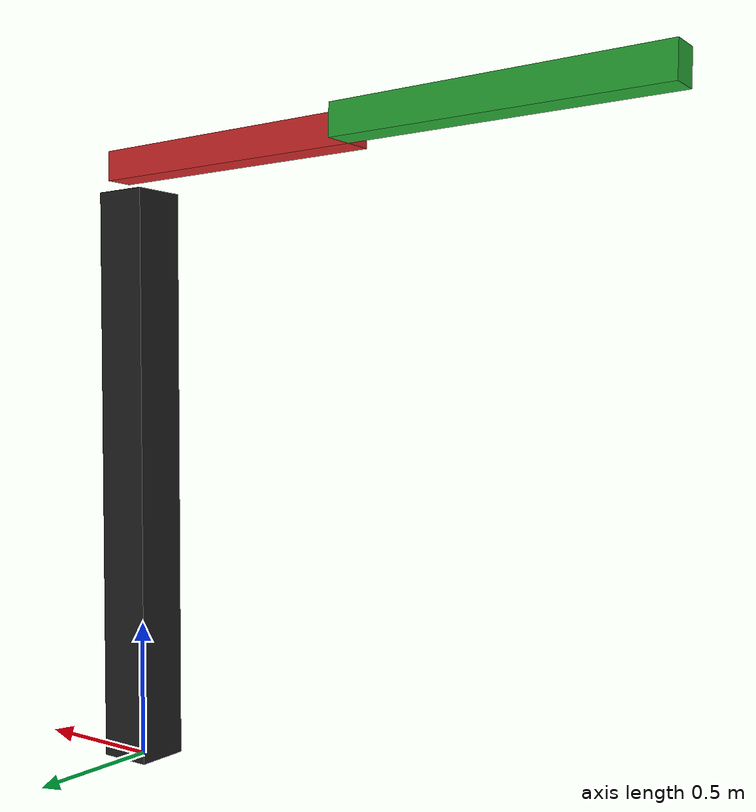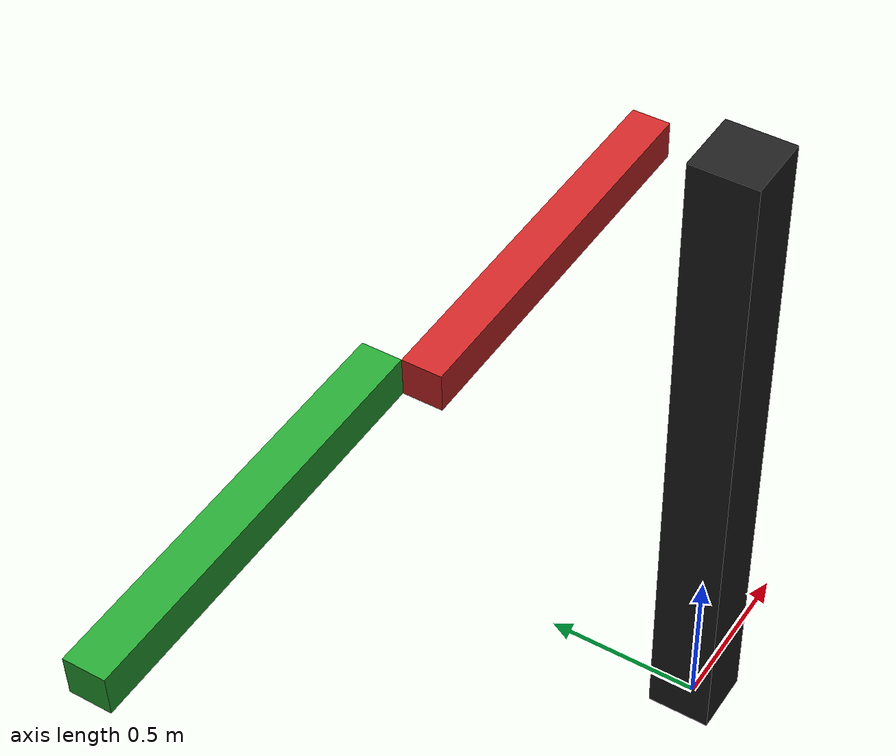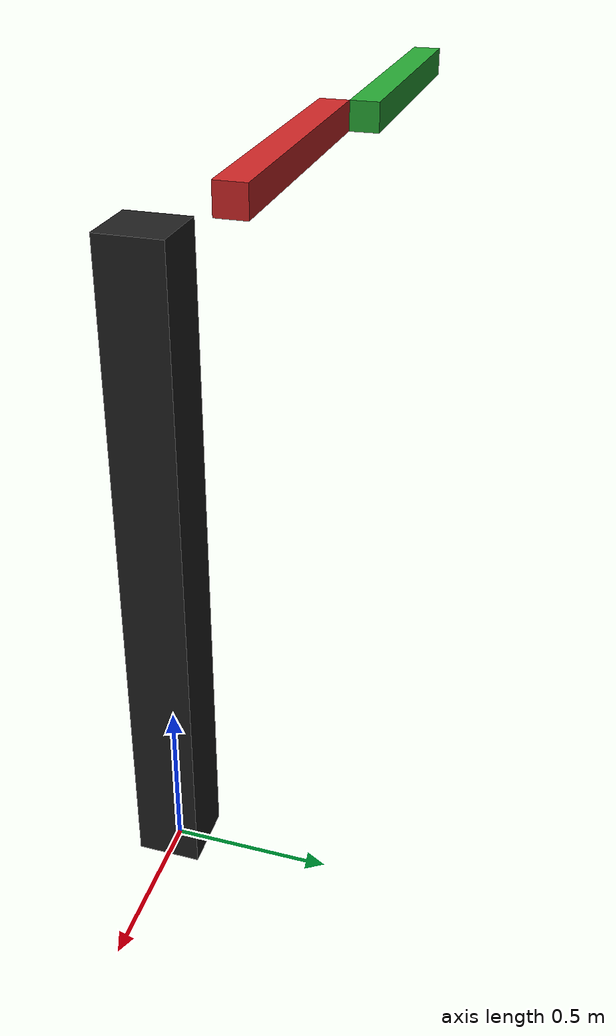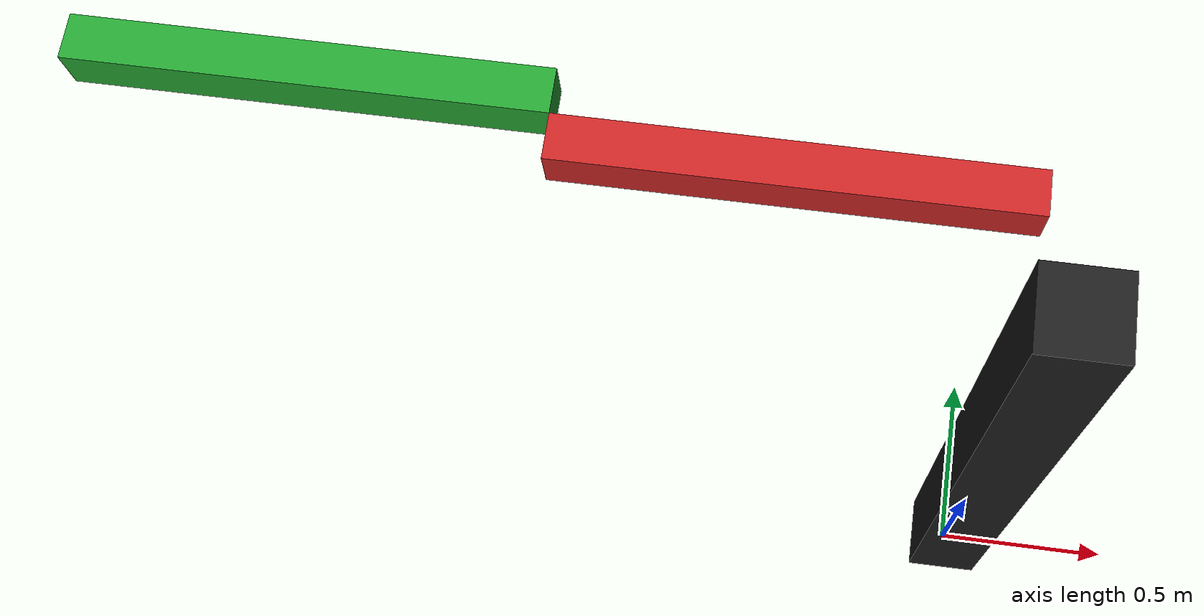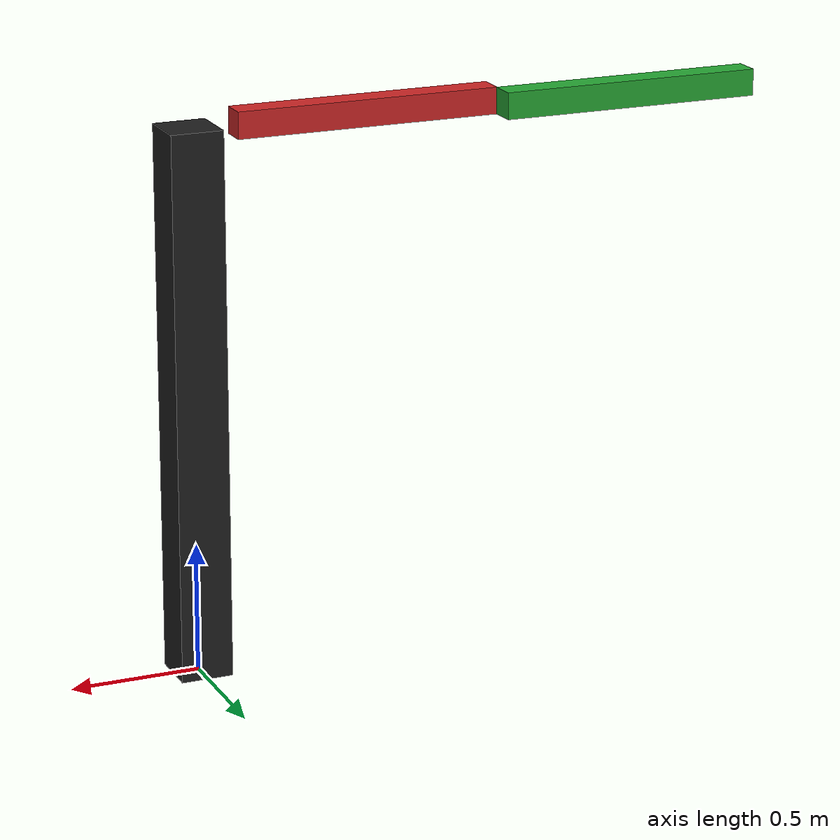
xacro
<?xml version="1.0"?>
<robot name="two_link_manipulator">

    <property name="DEG2RAD" value="0.017453292519943295"/>

    <macro name="box_link" params="name xyz rpy size">
        <link name="${name}">
            <visual>
                <origin xyz="${xyz}" rpy="${rpy}"/>
                <geometry>
                    <box size="${size}"/>
                </geometry>
            </visual>
            <inertial>
                <origin xyz="${xyz}" rpy="${rpy}"/>
                <mass value="1"/>
                <inertia ixx="1.0" ixy="0.0" ixz="0.0" iyy="1.0" iyz="0.0" izz="1.0"/>
            </inertial>
        </link>
    </macro>
    <macro name="revolute_joint" params="name xyz rpy parent child axis lower upper vel">
        <joint name="${name}" type="revolute">
            <origin xyz="${xyz}" rpy="${rpy}"/>
            <parent link="${parent}"/>
            <child link="${child}"/>
            <axis xyz="${axis}"/>
            <limit effort="100" lower="${lower}" upper="${upper}" velocity="${vel}"/>
            <dynamics damping="1" friction="1"/>
        </joint>
    </macro>
    <macro name="joint_transmission" params="joint">
        <transmission name="trans_${joint}">
            <type>
                transmission_interface/SimpleTransmission
            </type>
            <joint name="${joint}">
                <hardwareInterface>
                    hardware_interface/EffortJointInterface
                </hardwareInterface>
            </joint>
            <actuator name="motor_${joint}">
                <hardwareInterface>
                    hardware_interface/EffortJointInterface
                </hardwareInterface>
                <mechanicalReduction>
                    1
                </mechanicalReduction>
            </actuator>
        </transmission>
    </macro>

    <!--LINKS-->
    <link name="world"/>
    <box_link name="base_link" xyz="0.1 0.1 1.05" rpy="0 0 0" size="0.2 0.2 2.1"/>
    <box_link name="link1" xyz="0.05 0.05 0.5" rpy="0 0 0" size="0.1 0.1 1.0"/>
    <box_link name="link2" xyz="0.05 0.05 0.5" rpy="0 0 0" size="0.1 0.1 1.0"/>

    <!--JOINTS-->
    <joint name="base_world" type="fixed">
        <origin xyz="-0.1 -0.1 0" rpy="0 0 0"/>
        <parent link="world"/>
        <child link="base_link"/>
    </joint>
    <revolute_joint name="joint1" xyz="0 0.25 2.1" rpy="0 -${DEG2RAD * 90} 0" parent="base_link" child="link1"
                    axis="0 1 0"
                    lower="${-DEG2RAD * 179.9}" upper="${DEG2RAD * 180}" vel="1"/>
    <revolute_joint name="joint2" xyz="0 0.1 1" rpy="0 0 0" parent="link1" child="link2" axis="0 1 0"
                    lower="${-DEG2RAD * 179.9}" upper="${DEG2RAD * 180}" vel="1"/>

    <joint_transmission joint="joint1"/>
    <joint_transmission joint="joint2"/>

    <gazebo reference="base_link">
        <material>Gazebo/Black</material>
    </gazebo>
    <gazebo reference="link1">
        <material>Gazebo/Red</material>
    </gazebo>
    <gazebo reference="link2">
        <material>Gazebo/Green</material>
    </gazebo>

    <gazebo>
        <plugin name="gazebo_ros_control" filename="libgazebo_ros_control.so"/>
    </gazebo>

</robot>
